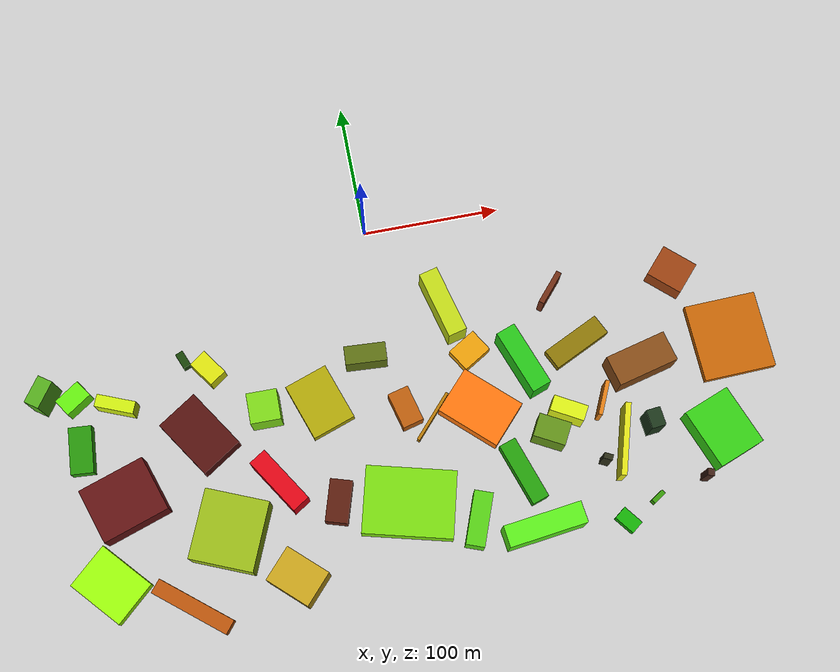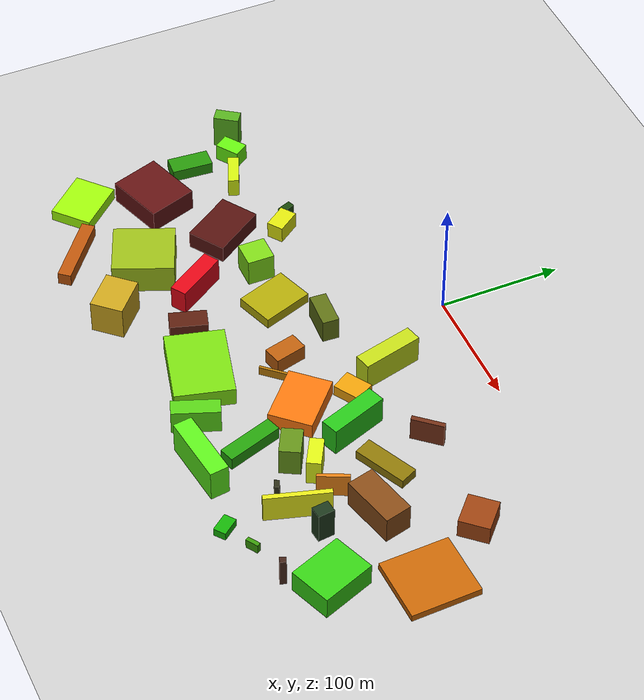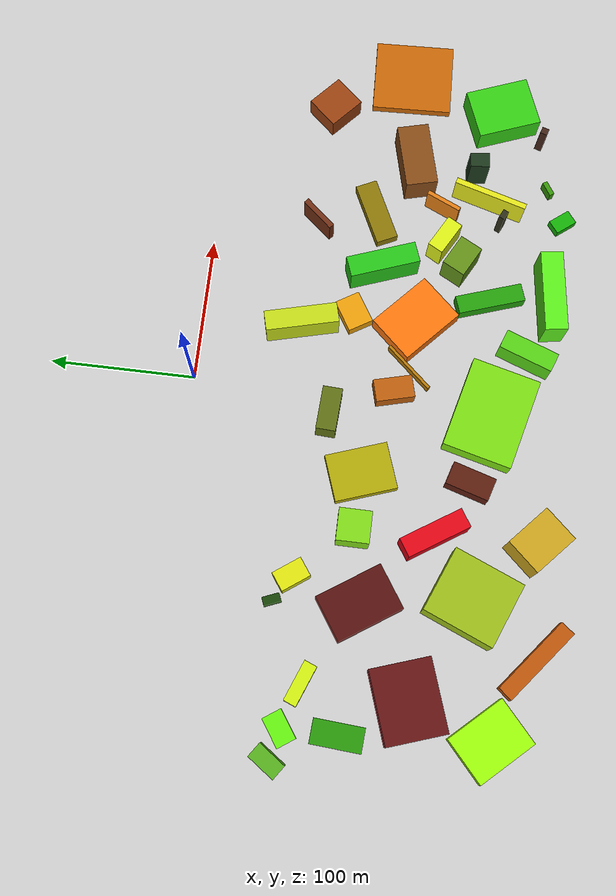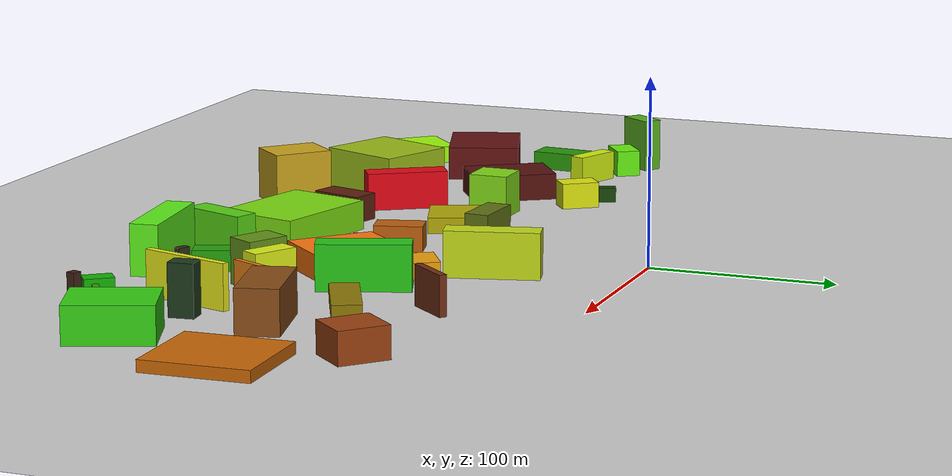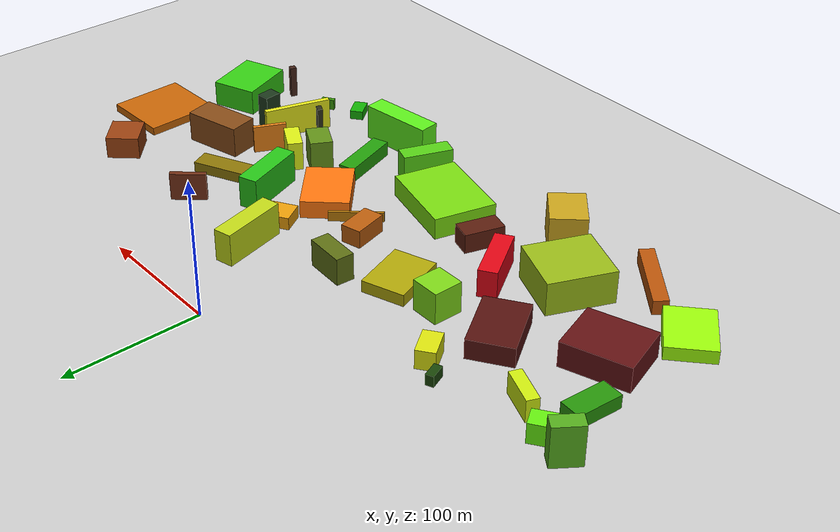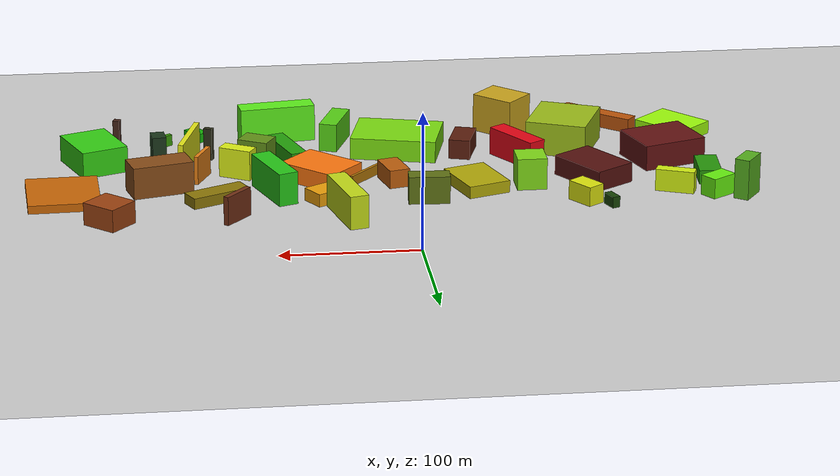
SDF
<sdf version="1.6">
 <world name="default">
  <model name="ground_plane">
   <static>1</static>
   <link name="link">
    <collision name="collision">
     <geometry><plane><normal>0 0 1</normal><size>1090 1090</size></plane></geometry>
     <surface>
      <contact><collide_bitmask>65535</collide_bitmask></contact>
      <friction><ode><mu>100</mu><mu2>50</mu2></ode></friction>
     </surface>
     <max_contacts>100</max_contacts>
    </collision>
    <visual name="visual">
     <cast_shadows>0</cast_shadows>
     <geometry><plane><normal>0 0 1</normal><size>1090 1090</size></plane></geometry>
     <material>
      <script><uri>file://media/materials/scripts/gazebo.material</uri><name>Gazebo/Grey</name></script>
     </material>
    </visual>
   </link>
  </model>
  <model name="box_5">
   <pose>93.0 -120.0 12.180641677544292 0.0 0.0 0.3478907333555959</pose>
   <link name="link">
    <inertial>
     <mass>1</mass>
     <inertia><ixx>1.0</ixx><ixy>0</ixy><ixz>0</ixz><iyy>1.0</iyy><iyz>0</iyz><izz>1.0</izz></inertia>
    </inertial>
    <collision name="collision">
     <geometry><box><size>14.568717129107444 48.8070347128669 24.361283355088585</size></box></geometry>
     <max_contacts>100</max_contacts>
    </collision>
    <visual name="visual">
     <geometry><box><size>14.568717129107444 48.8070347128669 24.361283355088585</size></box></geometry>
     <material>
      <ambient>0.1510670350167691 0.7726870333516273 0.09553444452975915 1</ambient>
      <diffuse>0.1510670350167691 0.7726870333516273 0.09553444452975915 1</diffuse>
     </material>
    </visual>
   </link>
  </model>
  <model name="box_6">
   <pose>-130.0 -201.0 12.420439109522807 0.0 0.0 2.746577244491435</pose>
   <link name="link">
    <inertial>
     <mass>1</mass>
     <inertia><ixx>1.0</ixx><ixy>0</ixy><ixz>0</ixz><iyy>1.0</iyy><iyz>0</iyz><izz>1.0</izz></inertia>
    </inertial>
    <collision name="collision">
     <geometry><box><size>45.535640340912956 49.55207788775828 24.840878219045614</size></box></geometry>
     <max_contacts>100</max_contacts>
    </collision>
    <visual name="visual">
     <geometry><box><size>45.535640340912956 49.55207788775828 24.840878219045614</size></box></geometry>
     <material>
      <ambient>0.6061634778335582 0.7349553700921742 0.09741520870213966 1</ambient>
      <diffuse>0.6061634778335582 0.7349553700921742 0.09741520870213966 1</diffuse>
     </material>
    </visual>
   </link>
  </model>
  <model name="box_8">
   <pose>-93.0 -120.0 11.785225408232899 0.0 0.0 -1.575943027175118</pose>
   <link name="link">
    <inertial>
     <mass>1</mass>
     <inertia><ixx>1.0</ixx><ixy>0</ixy><ixz>0</ixz><iyy>1.0</iyy><iyz>0</iyz><izz>1.0</izz></inertia>
    </inertial>
    <collision name="collision">
     <geometry><box><size>21.993526169065415 21.63359584731483 23.570450816465797</size></box></geometry>
     <max_contacts>100</max_contacts>
    </collision>
    <visual name="visual">
     <geometry><box><size>21.993526169065415 21.63359584731483 23.570450816465797</size></box></geometry>
     <material>
      <ambient>0.4954918938201597 0.844533946746231 0.09243314045672861 1</ambient>
      <diffuse>0.4954918938201597 0.844533946746231 0.09243314045672861 1</diffuse>
     </material>
    </visual>
   </link>
  </model>
  <model name="box_9">
   <pose>-164.0 -246.0 5.328805302925539 0.0 0.0 0.8906002371310532</pose>
   <link name="link">
    <inertial>
     <mass>1</mass>
     <inertia><ixx>1.0</ixx><ixy>0</ixy><ixz>0</ixz><iyy>1.0</iyy><iyz>0</iyz><izz>1.0</izz></inertia>
    </inertial>
    <collision name="collision">
     <geometry><box><size>10.84539500023051 59.44293036375359 10.657610605851078</size></box></geometry>
     <max_contacts>100</max_contacts>
    </collision>
    <visual name="visual">
     <geometry><box><size>10.84539500023051 59.44293036375359 10.657610605851078</size></box></geometry>
     <material>
      <ambient>0.732964302147717 0.3321250497890862 0.04179455139549442 1</ambient>
      <diffuse>0.732964302147717 0.3321250497890862 0.04179455139549442 1</diffuse>
     </material>
    </visual>
   </link>
  </model>
  <model name="box_13">
   <pose>-141.0 -129.0 7.3939138019333015 0.0 0.0 0.583486950459746</pose>
   <link name="link">
    <inertial>
     <mass>1</mass>
     <inertia><ixx>1.0</ixx><ixy>0</ixy><ixz>0</ixz><iyy>1.0</iyy><iyz>0</iyz><izz>1.0</izz></inertia>
    </inertial>
    <collision name="collision">
     <geometry><box><size>32.49622416145748 47.534398894730714 14.787827603866603</size></box></geometry>
     <max_contacts>100</max_contacts>
    </collision>
    <visual name="visual">
     <geometry><box><size>32.49622416145748 47.534398894730714 14.787827603866603</size></box></geometry>
     <material>
      <ambient>0.3330033309653926 0.07084292728000297 0.05799148079947687 1</ambient>
      <diffuse>0.3330033309653926 0.07084292728000297 0.05799148079947687 1</diffuse>
     </material>
    </visual>
   </link>
  </model>
  <model name="box_14">
   <pose>102.0 -174.0 12.236211449478962 0.0 0.0 -2.0681476778430423</pose>
   <link name="link">
    <inertial>
     <mass>1</mass>
     <inertia><ixx>1.0</ixx><ixy>0</ixy><ixz>0</ixz><iyy>1.0</iyy><iyz>0</iyz><izz>1.0</izz></inertia>
    </inertial>
    <collision name="collision">
     <geometry><box><size>16.761458297277493 23.171178610230232 24.472422898957923</size></box></geometry>
     <max_contacts>100</max_contacts>
    </collision>
    <visual name="visual">
     <geometry><box><size>16.761458297277493 23.171178610230232 24.472422898957923</size></box></geometry>
     <material>
      <ambient>0.38638441571702364 0.569032718956029 0.09597028587826636 1</ambient>
      <diffuse>0.38638441571702364 0.569032718956029 0.09597028587826636 1</diffuse>
     </material>
    </visual>
   </link>
  </model>
  <model name="box_15">
   <pose>-196.0 -97.0 8.17357476078345 0.0 0.0 2.758787207787016</pose>
   <link name="link">
    <inertial>
     <mass>1</mass>
     <inertia><ixx>1.0</ixx><ixy>0</ixy><ixz>0</ixz><iyy>1.0</iyy><iyz>0</iyz><izz>1.0</izz></inertia>
    </inertial>
    <collision name="collision">
     <geometry><box><size>28.291167822034396 8.949187133292341 16.3471495215669</size></box></geometry>
     <max_contacts>100</max_contacts>
    </collision>
    <visual name="visual">
     <geometry><box><size>28.291167822034396 8.949187133292341 16.3471495215669</size></box></geometry>
     <material>
      <ambient>0.8156770872116239 0.9296706031716788 0.06410646871202706 1</ambient>
      <diffuse>0.8156770872116239 0.9296706031716788 0.06410646871202706 1</diffuse>
     </material>
    </visual>
   </link>
  </model>
  <model name="box_19">
   <pose>-16.0 -95.0 10.220430348067152 0.0 0.0 -0.05964402914281683</pose>
   <link name="link">
    <inertial>
     <mass>1</mass>
     <inertia><ixx>1.0</ixx><ixy>0</ixy><ixz>0</ixz><iyy>1.0</iyy><iyz>0</iyz><izz>1.0</izz></inertia>
    </inertial>
    <collision name="collision">
     <geometry><box><size>29.72694537108584 13.459983994354998 20.440860696134305</size></box></geometry>
     <max_contacts>100</max_contacts>
    </collision>
    <visual name="visual">
     <geometry><box><size>29.72694537108584 13.459983994354998 20.440860696134305</size></box></geometry>
     <material>
      <ambient>0.3693755184638634 0.4395482027466472 0.0801602380240561 1</ambient>
      <diffuse>0.3693755184638634 0.4395482027466472 0.0801602380240561 1</diffuse>
     </material>
    </visual>
   </link>
  </model>
  <model name="box_23">
   <pose>-199.0 -166.0 9.504518910273303 0.0 0.0 1.8939893462124235</pose>
   <link name="link">
    <inertial>
     <mass>1</mass>
     <inertia><ixx>1.0</ixx><ixy>0</ixy><ixz>0</ixz><iyy>1.0</iyy><iyz>0</iyz><izz>1.0</izz></inertia>
    </inertial>
    <collision name="collision">
     <geometry><box><size>40.95194382159373 48.951772654198074 19.009037820546606</size></box></geometry>
     <max_contacts>100</max_contacts>
    </collision>
    <visual name="visual">
     <geometry><box><size>40.95194382159373 48.951772654198074 19.009037820546606</size></box></geometry>
     <material>
      <ambient>0.38695531870469224 0.07292859815211827 0.07454524635508473 1</ambient>
      <diffuse>0.38695531870469224 0.07292859815211827 0.07454524635508473 1</diffuse>
     </material>
    </visual>
   </link>
  </model>
  <model name="box_30">
   <pose>203.0 -224.0 12.413508423237495 0.0 0.0 -0.32165454282165035</pose>
   <link name="link">
    <inertial>
     <mass>1</mass>
     <inertia><ixx>1.0</ixx><ixy>0</ixy><ixz>0</ixz><iyy>1.0</iyy><iyz>0</iyz><izz>1.0</izz></inertia>
    </inertial>
    <collision name="collision">
     <geometry><box><size>4.813305103990317 4.957209498887963 24.82701684647499</size></box></geometry>
     <max_contacts>100</max_contacts>
    </collision>
    <visual name="visual">
     <geometry><box><size>4.813305103990317 4.957209498887963 24.82701684647499</size></box></geometry>
     <material>
      <ambient>0.26171214500727047 0.13915971177775255 0.0973608503783333 1</ambient>
      <diffuse>0.26171214500727047 0.13915971177775255 0.0973608503783333 1</diffuse>
     </material>
    </visual>
   </link>
  </model>
  <model name="box_34">
   <pose>175.0 -136.0 11.733812268122243 0.0 0.0 1.814076239464659</pose>
   <link name="link">
    <inertial>
     <mass>1</mass>
     <inertia><ixx>1.0</ixx><ixy>0</ixy><ixz>0</ixz><iyy>1.0</iyy><iyz>0</iyz><izz>1.0</izz></inertia>
    </inertial>
    <collision name="collision">
     <geometry><box><size>22.131204064604418 44.93614656815169 23.467624536244486</size></box></geometry>
     <max_contacts>100</max_contacts>
    </collision>
    <visual name="visual">
     <geometry><box><size>22.131204064604418 44.93614656815169 23.467624536244486</size></box></geometry>
     <material>
      <ambient>0.5309834691382032 0.29794252185444836 0.09202990014213525 1</ambient>
      <diffuse>0.5309834691382032 0.29794252185444836 0.09202990014213525 1</diffuse>
     </material>
    </visual>
   </link>
  </model>
  <model name="box_35">
   <pose>213.0 -74.0 8.339446234318029 0.0 0.0 2.4051965561209148</pose>
   <link name="link">
    <inertial>
     <mass>1</mass>
     <inertia><ixx>1.0</ixx><ixy>0</ixy><ixz>0</ixz><iyy>1.0</iyy><iyz>0</iyz><izz>1.0</izz></inertia>
    </inertial>
    <collision name="collision">
     <geometry><box><size>26.93304693015524 24.496622838593844 16.678892468636057</size></box></geometry>
     <max_contacts>100</max_contacts>
    </collision>
    <visual name="visual">
     <geometry><box><size>26.93304693015524 24.496622838593844 16.678892468636057</size></box></geometry>
     <material>
      <ambient>0.6058172867635624 0.2563903896120543 0.0654074214456316 1</ambient>
      <diffuse>0.6058172867635624 0.2563903896120543 0.0654074214456316 1</diffuse>
     </material>
    </visual>
   </link>
  </model>
  <model name="box_38">
   <pose>-5.0 -204.0 8.082145604959317 0.0 0.0 2.891012607475811</pose>
   <link name="link">
    <inertial>
     <mass>1</mass>
     <inertia><ixx>1.0</ixx><ixy>0</ixy><ixz>0</ixz><iyy>1.0</iyy><iyz>0</iyz><izz>1.0</izz></inertia>
    </inertial>
    <collision name="collision">
     <geometry><box><size>63.81542495513948 47.632628482941215 16.164291209918634</size></box></geometry>
     <max_contacts>100</max_contacts>
    </collision>
    <visual name="visual">
     <geometry><box><size>63.81542495513948 47.632628482941215 16.164291209918634</size></box></geometry>
     <material>
      <ambient>0.4810716751025005 0.8603596243398821 0.06338937729379857 1</ambient>
      <diffuse>0.4810716751025005 0.8603596243398821 0.06338937729379857 1</diffuse>
     </material>
    </visual>
   </link>
  </model>
  <model name="box_39">
   <pose>221.0 -194.0 9.888799346078489 0.0 0.0 -2.776487784236237</pose>
   <link name="link">
    <inertial>
     <mass>1</mass>
     <inertia><ixx>1.0</ixx><ixy>0</ixy><ixz>0</ixz><iyy>1.0</iyy><iyz>0</iyz><izz>1.0</izz></inertia>
    </inertial>
    <collision name="collision">
     <geometry><box><size>35.161756704427944 44.71986715520327 19.777598692156978</size></box></geometry>
     <max_contacts>100</max_contacts>
    </collision>
    <visual name="visual">
     <geometry><box><size>35.161756704427944 44.71986715520327 19.777598692156978</size></box></geometry>
     <material>
      <ambient>0.20723238165181845 0.8107544316672761 0.07755921055747834 1</ambient>
      <diffuse>0.20723238165181845 0.8107544316672761 0.07755921055747834 1</diffuse>
     </material>
    </visual>
   </link>
  </model>
  <model name="box_40">
   <pose>136.0 -200.0 12.132162485877139 0.0 0.0 2.6780863786500375</pose>
   <link name="link">
    <inertial>
     <mass>1</mass>
     <inertia><ixx>1.0</ixx><ixy>0</ixy><ixz>0</ixz><iyy>1.0</iyy><iyz>0</iyz><izz>1.0</izz></inertia>
    </inertial>
    <collision name="collision">
     <geometry><box><size>6.462550297341975 4.063285738065802 24.264324971754277</size></box></geometry>
     <max_contacts>100</max_contacts>
    </collision>
    <visual name="visual">
     <geometry><box><size>6.462550297341975 4.063285738065802 24.264324971754277</size></box></geometry>
     <material>
      <ambient>0.17641557062571545 0.18113544883706556 0.09515421557550698 1</ambient>
      <diffuse>0.17641557062571545 0.18113544883706556 0.09515421557550698 1</diffuse>
     </material>
    </visual>
   </link>
  </model>
  <model name="box_41">
   <pose>143.0 -244.0 3.476469358814098 0.0 0.0 -0.9147182973642045</pose>
   <link name="link">
    <inertial>
     <mass>1</mass>
     <inertia><ixx>1.0</ixx><ixy>0</ixy><ixz>0</ixz><iyy>1.0</iyy><iyz>0</iyz><izz>1.0</izz></inertia>
    </inertial>
    <collision name="collision">
     <geometry><box><size>15.856706889763535 10.18111910579626 6.952938717628196</size></box></geometry>
     <max_contacts>100</max_contacts>
    </collision>
    <visual name="visual">
     <geometry><box><size>15.856706889763535 10.18111910579626 6.952938717628196</size></box></geometry>
     <material>
      <ambient>0.07983863676356695 0.6925122687197355 0.027266426343639984 1</ambient>
      <diffuse>0.07983863676356695 0.6925122687197355 0.027266426343639984 1</diffuse>
     </material>
    </visual>
   </link>
  </model>
  <model name="box_43">
   <pose>45.0 -69.0 12.29163479925328 0.0 0.0 -2.896683955795986</pose>
   <link name="link">
    <inertial>
     <mass>1</mass>
     <inertia><ixx>1.0</ixx><ixy>0</ixy><ixz>0</ixz><iyy>1.0</iyy><iyz>0</iyz><izz>1.0</izz></inertia>
    </inertial>
    <collision name="collision">
     <geometry><box><size>13.75184413998748 50.04514592465157 24.58326959850656</size></box></geometry>
     <max_contacts>100</max_contacts>
    </collision>
    <visual name="visual">
     <geometry><box><size>13.75184413998748 50.04514592465157 24.58326959850656</size></box></geometry>
     <material>
      <ambient>0.7639931604975965 0.8532520939976921 0.09640497881767279 1</ambient>
      <diffuse>0.7639931604975965 0.8532520939976921 0.09640497881767279 1</diffuse>
     </material>
    </visual>
   </link>
  </model>
  <model name="box_44">
   <pose>83.0 -238.0 13.774347091724763 0.0 0.0 -1.4452200126075483</pose>
   <link name="link">
    <inertial>
     <mass>1</mass>
     <inertia><ixx>1.0</ixx><ixy>0</ixy><ixz>0</ixz><iyy>1.0</iyy><iyz>0</iyz><izz>1.0</izz></inertia>
    </inertial>
    <collision name="collision">
     <geometry><box><size>15.455555862027065 56.23346511368365 27.548694183449527</size></box></geometry>
     <max_contacts>100</max_contacts>
    </collision>
    <visual name="visual">
     <geometry><box><size>15.455555862027065 56.23346511368365 27.548694183449527</size></box></geometry>
     <material>
      <ambient>0.36477967992937377 0.9359964496559172 0.10803409483705696 1</ambient>
      <diffuse>0.36477967992937377 0.9359964496559172 0.10803409483705696 1</diffuse>
     </material>
    </visual>
   </link>
  </model>
  <model name="box_50">
   <pose>40.0 -225.0 10.578530268620582 0.0 0.0 -0.35900548347877853</pose>
   <link name="link">
    <inertial>
     <mass>1</mass>
     <inertia><ixx>1.0</ixx><ixy>0</ixy><ixz>0</ixz><iyy>1.0</iyy><iyz>0</iyz><izz>1.0</izz></inertia>
    </inertial>
    <collision name="collision">
     <geometry><box><size>13.319653773570415 38.08172055820613 21.157060537241165</size></box></geometry>
     <max_contacts>100</max_contacts>
    </collision>
    <visual name="visual">
     <geometry><box><size>13.319653773570415 38.08172055820613 21.157060537241165</size></box></geometry>
     <material>
      <ambient>0.3388512799730252 0.8157356768695342 0.08296886485192613 1</ambient>
      <diffuse>0.3388512799730252 0.8157356768695342 0.08296886485192613 1</diffuse>
     </material>
    </visual>
   </link>
  </model>
  <model name="box_52">
   <pose>-225.0 -87.0 7.467189815625993 0.0 0.0 2.1683072941414405</pose>
   <link name="link">
    <inertial>
     <mass>1</mass>
     <inertia><ixx>1.0</ixx><ixy>0</ixy><ixz>0</ixz><iyy>1.0</iyy><iyz>0</iyz><izz>1.0</izz></inertia>
    </inertial>
    <collision name="collision">
     <geometry><box><size>13.723568482200209 20.758068159289614 14.934379631251986</size></box></geometry>
     <max_contacts>100</max_contacts>
    </collision>
    <visual name="visual">
     <geometry><box><size>13.723568482200209 20.758068159289614 14.934379631251986</size></box></geometry>
     <material>
      <ambient>0.3983960676874573 0.938839908962965 0.05856619463236073 1</ambient>
      <diffuse>0.3983960676874573 0.938839908962965 0.05856619463236073 1</diffuse>
     </material>
    </visual>
   </link>
  </model>
  <model name="box_53">
   <pose>78.0 -197.0 5.576283907005665 0.0 0.0 -1.2492827190321332</pose>
   <link name="link">
    <inertial>
     <mass>1</mass>
     <inertia><ixx>1.0</ixx><ixy>0</ixy><ixz>0</ixz><iyy>1.0</iyy><iyz>0</iyz><izz>1.0</izz></inertia>
    </inertial>
    <collision name="collision">
     <geometry><box><size>46.772057144347556 12.579333476927994 11.15256781401133</size></box></geometry>
     <max_contacts>100</max_contacts>
    </collision>
    <visual name="visual">
     <geometry><box><size>46.772057144347556 12.579333476927994 11.15256781401133</size></box></geometry>
     <material>
      <ambient>0.14142465896214285 0.6263254640437175 0.043735560054946394 1</ambient>
      <diffuse>0.14142465896214285 0.6263254640437175 0.043735560054946394 1</diffuse>
     </material>
    </visual>
   </link>
  </model>
  <model name="box_57">
   <pose>151.0 -190.0 12.043856261997218 0.0 0.0 1.2854394146472847</pose>
   <link name="link">
    <inertial>
     <mass>1</mass>
     <inertia><ixx>1.0</ixx><ixy>0</ixy><ixz>0</ixz><iyy>1.0</iyy><iyz>0</iyz><izz>1.0</izz></inertia>
    </inertial>
    <collision name="collision">
     <geometry><box><size>51.70887473942381 3.978318392629522 24.087712523994437</size></box></geometry>
     <max_contacts>100</max_contacts>
    </collision>
    <visual name="visual">
     <geometry><box><size>51.70887473942381 3.978318392629522 24.087712523994437</size></box></geometry>
     <material>
      <ambient>0.8921513724454181 0.8969720653918409 0.09446161774115465 1</ambient>
      <diffuse>0.8921513724454181 0.8969720653918409 0.09446161774115465 1</diffuse>
     </material>
    </visual>
   </link>
  </model>
  <model name="box_59">
   <pose>-91.0 -173.0 10.476908913860031 0.0 0.0 -1.0013506717505154</pose>
   <link name="link">
    <inertial>
     <mass>1</mass>
     <inertia><ixx>1.0</ixx><ixy>0</ixy><ixz>0</ixz><iyy>1.0</iyy><iyz>0</iyz><izz>1.0</izz></inertia>
    </inertial>
    <collision name="collision">
     <geometry><box><size>45.5059008148827 13.641786939762508 20.953817827720062</size></box></geometry>
     <max_contacts>100</max_contacts>
    </collision>
    <visual name="visual">
     <geometry><box><size>45.5059008148827 13.641786939762508 20.953817827720062</size></box></geometry>
     <material>
      <ambient>0.8869161425110601 0.022240258857191275 0.08217183461851005 1</ambient>
      <diffuse>0.8869161425110601 0.022240258857191275 0.08217183461851005 1</diffuse>
     </material>
    </visual>
   </link>
  </model>
  <model name="box_61">
   <pose>-89.0 -241.0 14.385014468158124 0.0 0.0 -2.312393342709847</pose>
   <link name="link">
    <inertial>
     <mass>1</mass>
     <inertia><ixx>1.0</ixx><ixy>0</ixy><ixz>0</ixz><iyy>1.0</iyy><iyz>0</iyz><izz>1.0</izz></inertia>
    </inertial>
    <collision name="collision">
     <geometry><box><size>26.638618352874758 33.65732865111629 28.770028936316248</size></box></geometry>
     <max_contacts>100</max_contacts>
    </collision>
    <visual name="visual">
     <geometry><box><size>26.638618352874758 33.65732865111629 28.770028936316248</size></box></geometry>
     <material>
      <ambient>0.7931377531728706 0.6411030666062092 0.1128236428875147 1</ambient>
      <diffuse>0.7931377531728706 0.6411030666062092 0.1128236428875147 1</diffuse>
     </material>
    </visual>
   </link>
  </model>
  <model name="box_62">
   <pose>143.0 -158.0 10.612784833959536 0.0 0.0 2.7126834702468043</pose>
   <link name="link">
    <inertial>
     <mass>1</mass>
     <inertia><ixx>1.0</ixx><ixy>0</ixy><ixz>0</ixz><iyy>1.0</iyy><iyz>0</iyz><izz>1.0</izz></inertia>
    </inertial>
    <collision name="collision">
     <geometry><box><size>2.9094047264742824 25.195525178283663 21.22556966791907</size></box></geometry>
     <max_contacts>100</max_contacts>
    </collision>
    <visual name="visual">
     <geometry><box><size>2.9094047264742824 25.195525178283663 21.22556966791907</size></box></geometry>
     <material>
      <ambient>0.8903254708431828 0.49776740475164527 0.08323752810948655 1</ambient>
      <diffuse>0.8903254708431828 0.49776740475164527 0.08323752810948655 1</diffuse>
     </material>
    </visual>
   </link>
  </model>
  <model name="box_66">
   <pose>167.0 -232.0 4.202942264141191 0.0 0.0 2.141572495543996</pose>
   <link name="link">
    <inertial>
     <mass>1</mass>
     <inertia><ixx>1.0</ixx><ixy>0</ixy><ixz>0</ixz><iyy>1.0</iyy><iyz>0</iyz><izz>1.0</izz></inertia>
    </inertial>
    <collision name="collision">
     <geometry><box><size>3.4628423741446364 10.488893567857467 8.405884528282382</size></box></geometry>
     <max_contacts>100</max_contacts>
    </collision>
    <visual name="visual">
     <geometry><box><size>3.4628423741446364 10.488893567857467 8.405884528282382</size></box></geometry>
     <material>
      <ambient>0.21653841395676565 0.5954912912606012 0.03296425305208777 1</ambient>
      <diffuse>0.21653841395676565 0.5954912912606012 0.03296425305208777 1</diffuse>
     </material>
    </visual>
   </link>
  </model>
  <model name="box_73">
   <pose>57.0 -147.0 6.736701346163523 0.0 0.0 -2.3184936648706436</pose>
   <link name="link">
    <inertial>
     <mass>1</mass>
     <inertia><ixx>1.0</ixx><ixy>0</ixy><ixz>0</ixz><iyy>1.0</iyy><iyz>0</iyz><izz>1.0</izz></inertia>
    </inertial>
    <collision name="collision">
     <geometry><box><size>35.465200659061054 47.67070644424733 13.473402692327046</size></box></geometry>
     <max_contacts>100</max_contacts>
    </collision>
    <visual name="visual">
     <geometry><box><size>35.465200659061054 47.67070644424733 13.473402692327046</size></box></geometry>
     <material>
      <ambient>0.9920070039961404 0.4630234658226756 0.05283687330324332 1</ambient>
      <diffuse>0.9920070039961404 0.4630234658226756 0.05283687330324332 1</diffuse>
     </material>
    </visual>
   </link>
  </model>
  <model name="box_79">
   <pose>-53.0 -194.0 7.329973770237946 0.0 0.0 -0.2949790749454574</pose>
   <link name="link">
    <inertial>
     <mass>1</mass>
     <inertia><ixx>1.0</ixx><ixy>0</ixy><ixz>0</ixz><iyy>1.0</iyy><iyz>0</iyz><izz>1.0</izz></inertia>
    </inertial>
    <collision name="collision">
     <geometry><box><size>15.839266251435271 30.178824433096537 14.659947540475892</size></box></geometry>
     <max_contacts>100</max_contacts>
    </collision>
    <visual name="visual">
     <geometry><box><size>15.839266251435271 30.178824433096537 14.659947540475892</size></box></geometry>
     <material>
      <ambient>0.3579974531068668 0.11577986290016462 0.057489990354807424 1</ambient>
      <diffuse>0.3579974531068668 0.11577986290016462 0.057489990354807424 1</diffuse>
     </material>
    </visual>
   </link>
  </model>
  <model name="box_80">
   <pose>23.0 -146.0 3.8312740782133403 0.0 0.0 -2.304366436370442</pose>
   <link name="link">
    <inertial>
     <mass>1</mass>
     <inertia><ixx>1.0</ixx><ixy>0</ixy><ixz>0</ixz><iyy>1.0</iyy><iyz>0</iyz><izz>1.0</izz></inertia>
    </inertial>
    <collision name="collision">
     <geometry><box><size>39.73992937379672 2.134152422848265 7.662548156426681</size></box></geometry>
     <max_contacts>100</max_contacts>
    </collision>
    <visual name="visual">
     <geometry><box><size>39.73992937379672 2.134152422848265 7.662548156426681</size></box></geometry>
     <material>
      <ambient>0.713747949260759 0.47321885048339085 0.03004920845657522 1</ambient>
      <diffuse>0.713747949260759 0.47321885048339085 0.03004920845657522 1</diffuse>
     </material>
    </visual>
   </link>
  </model>
  <model name="box_81">
   <pose>5.0 -137.0 6.824074013637423 0.0 0.0 -1.3210916093599583</pose>
   <link name="link">
    <inertial>
     <mass>1</mass>
     <inertia><ixx>1.0</ixx><ixy>0</ixy><ixz>0</ixz><iyy>1.0</iyy><iyz>0</iyz><izz>1.0</izz></inertia>
    </inertial>
    <collision name="collision">
     <geometry><box><size>26.53294448973685 15.412126520552876 13.648148027274846</size></box></geometry>
     <max_contacts>100</max_contacts>
    </collision>
    <visual name="visual">
     <geometry><box><size>26.53294448973685 15.412126520552876 13.648148027274846</size></box></geometry>
     <material>
      <ambient>0.7370607822659504 0.3686737570181271 0.053522149126568025 1</ambient>
      <diffuse>0.7370607822659504 0.3686737570181271 0.053522149126568025 1</diffuse>
     </material>
    </visual>
   </link>
  </model>
  <model name="box_83">
   <pose>245.0 -128.0 3.047889268219996 0.0 0.0 -1.5369852967815305</pose>
   <link name="link">
    <inertial>
     <mass>1</mass>
     <inertia><ixx>1.0</ixx><ixy>0</ixy><ixz>0</ixz><iyy>1.0</iyy><iyz>0</iyz><izz>1.0</izz></inertia>
    </inertial>
    <collision name="collision">
     <geometry><box><size>56.18522464515669 52.27310641391283 6.095778536439992</size></box></geometry>
     <max_contacts>100</max_contacts>
    </collision>
    <visual name="visual">
     <geometry><box><size>56.18522464515669 52.27310641391283 6.095778536439992</size></box></geometry>
     <material>
      <ambient>0.7826340301863268 0.3993910678504655 0.023905013868392125 1</ambient>
      <diffuse>0.7826340301863268 0.3993910678504655 0.023905013868392125 1</diffuse>
     </material>
    </visual>
   </link>
  </model>
  <model name="box_84">
   <pose>-245.0 -82.0 14.96398686879158 0.0 0.0 0.9560396650358185</pose>
   <link name="link">
    <inertial>
     <mass>1</mass>
     <inertia><ixx>1.0</ixx><ixy>0</ixy><ixz>0</ixz><iyy>1.0</iyy><iyz>0</iyz><izz>1.0</izz></inertia>
    </inertial>
    <collision name="collision">
     <geometry><box><size>20.801453976119756 11.066914053185233 29.92797373758316</size></box></geometry>
     <max_contacts>100</max_contacts>
    </collision>
    <visual name="visual">
     <geometry><box><size>20.801453976119756 11.066914053185233 29.92797373758316</size></box></geometry>
     <material>
      <ambient>0.33568366749348433 0.6804584691860653 0.11736460289248297 1</ambient>
      <diffuse>0.33568366749348433 0.6804584691860653 0.11736460289248297 1</diffuse>
     </material>
    </visual>
   </link>
  </model>
  <model name="box_94">
   <pose>-217.0 -221.0 4.894389115679768 0.0 0.0 -0.8377545759619555</pose>
   <link name="link">
    <inertial>
     <mass>1</mass>
     <inertia><ixx>1.0</ixx><ixy>0</ixy><ixz>0</ixz><iyy>1.0</iyy><iyz>0</iyz><izz>1.0</izz></inertia>
    </inertial>
    <collision name="collision">
     <geometry><box><size>43.623836499159125 34.39170782896861 9.788778231359537</size></box></geometry>
     <max_contacts>100</max_contacts>
    </collision>
    <visual name="visual">
     <geometry><box><size>43.623836499159125 34.39170782896861 9.788778231359537</size></box></geometry>
     <material>
      <ambient>0.6175609236648404 0.9891513802024257 0.03838736561317466 1</ambient>
      <diffuse>0.6175609236648404 0.9891513802024257 0.03838736561317466 1</diffuse>
     </material>
    </visual>
   </link>
  </model>
  <model name="box_95">
   <pose>-128.0 -83.0 7.1822747722254405 0.0 0.0 -2.522937255477635</pose>
   <link name="link">
    <inertial>
     <mass>1</mass>
     <inertia><ixx>1.0</ixx><ixy>0</ixy><ixz>0</ixz><iyy>1.0</iyy><iyz>0</iyz><izz>1.0</izz></inertia>
    </inertial>
    <collision name="collision">
     <geometry><box><size>13.727901948346876 21.26176689227792 14.364549544450881</size></box></geometry>
     <max_contacts>100</max_contacts>
    </collision>
    <visual name="visual">
     <geometry><box><size>13.727901948346876 21.26176689227792 14.364549544450881</size></box></geometry>
     <material>
      <ambient>0.8667554024550278 0.8926843104111059 0.056331566840983845 1</ambient>
      <diffuse>0.8667554024550278 0.8926843104111059 0.056331566840983845 1</diffuse>
     </material>
    </visual>
   </link>
  </model>
  <model name="box_97">
   <pose>-145.0 -72.0 4.103647153428659 0.0 0.0 1.9548253489771588</pose>
   <link name="link">
    <inertial>
     <mass>1</mass>
     <inertia><ixx>1.0</ixx><ixy>0</ixy><ixz>0</ixz><iyy>1.0</iyy><iyz>0</iyz><izz>1.0</izz></inertia>
    </inertial>
    <collision name="collision">
     <geometry><box><size>11.890616652996691 5.843474174398671 8.207294306857317</size></box></geometry>
     <max_contacts>100</max_contacts>
    </collision>
    <visual name="visual">
     <geometry><box><size>11.890616652996691 5.843474174398671 8.207294306857317</size></box></geometry>
     <material>
      <ambient>0.09631551835545815 0.2687869182430733 0.0321854678700287 1</ambient>
      <diffuse>0.09631551835545815 0.2687869182430733 0.0321854678700287 1</diffuse>
     </material>
    </visual>
   </link>
  </model>
  <model name="box_102">
   <pose>135.0 -112.0 4.022821187851656 0.0 0.0 0.44279375818264916</pose>
   <link name="link">
    <inertial>
     <mass>1</mass>
     <inertia><ixx>1.0</ixx><ixy>0</ixy><ixz>0</ixz><iyy>1.0</iyy><iyz>0</iyz><izz>1.0</izz></inertia>
    </inertial>
    <collision name="collision">
     <geometry><box><size>45.04598361415417 15.272217187784182 8.045642375703313</size></box></geometry>
     <max_contacts>100</max_contacts>
    </collision>
    <visual name="visual">
     <geometry><box><size>45.04598361415417 15.272217187784182 8.045642375703313</size></box></geometry>
     <material>
      <ambient>0.550976971496709 0.4676221734836721 0.031551538728248285 1</ambient>
      <diffuse>0.550976971496709 0.4676221734836721 0.031551538728248285 1</diffuse>
     </material>
    </visual>
   </link>
  </model>
  <model name="box_106">
   <pose>-54.0 -121.0 4.486791488278155 0.0 0.0 0.33378986143757877</pose>
   <link name="link">
    <inertial>
     <mass>1</mass>
     <inertia><ixx>1.0</ixx><ixy>0</ixy><ixz>0</ixz><iyy>1.0</iyy><iyz>0</iyz><izz>1.0</izz></inertia>
    </inertial>
    <collision name="collision">
     <geometry><box><size>32.173116024777315 42.74829784695769 8.97358297655631</size></box></geometry>
     <max_contacts>100</max_contacts>
    </collision>
    <visual name="visual">
     <geometry><box><size>32.173116024777315 42.74829784695769 8.97358297655631</size></box></geometry>
     <material>
      <ambient>0.6949196783177675 0.6578049838894168 0.03519052147669141 1</ambient>
      <diffuse>0.6949196783177675 0.6578049838894168 0.03519052147669141 1</diffuse>
     </material>
    </visual>
   </link>
  </model>
  <model name="box_111">
   <pose>123.0 -72.0 10.576791173111886 0.0 0.0 -0.7159233736941056</pose>
   <link name="link">
    <inertial>
     <mass>1</mass>
     <inertia><ixx>1.0</ixx><ixy>0</ixy><ixz>0</ixz><iyy>1.0</iyy><iyz>0</iyz><izz>1.0</izz></inertia>
    </inertial>
    <collision name="collision">
     <geometry><box><size>3.9593725958411863 26.317512278791924 21.15358234622377</size></box></geometry>
     <max_contacts>100</max_contacts>
    </collision>
    <visual name="visual">
     <geometry><box><size>3.9593725958411863 26.317512278791924 21.15358234622377</size></box></geometry>
     <material>
      <ambient>0.44466420739260726 0.18393361243019324 0.08295522488715204 1</ambient>
      <diffuse>0.44466420739260726 0.18393361243019324 0.08295522488715204 1</diffuse>
     </material>
    </visual>
   </link>
  </model>
  <model name="box_120">
   <pose>58.0 -104.0 4.773782314643148 0.0 0.0 -1.0270434939496211</pose>
   <link name="link">
    <inertial>
     <mass>1</mass>
     <inertia><ixx>1.0</ixx><ixy>0</ixy><ixz>0</ixz><iyy>1.0</iyy><iyz>0</iyz><izz>1.0</izz></inertia>
    </inertial>
    <collision name="collision">
     <geometry><box><size>17.819697739779606 22.90162376605965 9.547564629286295</size></box></geometry>
     <max_contacts>100</max_contacts>
    </collision>
    <visual name="visual">
     <geometry><box><size>17.819697739779606 22.90162376605965 9.547564629286295</size></box></geometry>
     <material>
      <ambient>0.9233924007450296 0.6225097963627779 0.03744142991876979 1</ambient>
      <diffuse>0.9233924007450296 0.6225097963627779 0.03744142991876979 1</diffuse>
     </material>
    </visual>
   </link>
  </model>
  <model name="box_121">
   <pose>174.0 -180.0 13.713576163597404 0.0 0.0 0.10827061116910523</pose>
   <link name="link">
    <inertial>
     <mass>1</mass>
     <inertia><ixx>1.0</ixx><ixy>0</ixy><ixz>0</ixz><iyy>1.0</iyy><iyz>0</iyz><izz>1.0</izz></inertia>
    </inertial>
    <collision name="collision">
     <geometry><box><size>10.166540634925372 13.415085191896832 27.427152327194808</size></box></geometry>
     <max_contacts>100</max_contacts>
    </collision>
    <visual name="visual">
     <geometry><box><size>10.166540634925372 13.415085191896832 27.427152327194808</size></box></geometry>
     <material>
      <ambient>0.1095513165491262 0.2167413304105975 0.10755746010664631 1</ambient>
      <diffuse>0.1095513165491262 0.2167413304105975 0.10755746010664631 1</diffuse>
     </material>
    </visual>
   </link>
  </model>
  <model name="box_123">
   <pose>117.0 -161.0 11.21372675303838 0.0 0.0 1.0574191394318593</pose>
   <link name="link">
    <inertial>
     <mass>1</mass>
     <inertia><ixx>1.0</ixx><ixy>0</ixy><ixz>0</ixz><iyy>1.0</iyy><iyz>0</iyz><izz>1.0</izz></inertia>
    </inertial>
    <collision name="collision">
     <geometry><box><size>11.248130748663348 24.865126790169207 22.42745350607676</size></box></geometry>
     <max_contacts>100</max_contacts>
    </collision>
    <visual name="visual">
     <geometry><box><size>11.248130748663348 24.865126790169207 22.42745350607676</size></box></geometry>
     <material>
      <ambient>0.8651905016380781 0.9380804240841811 0.08795079806304612 1</ambient>
      <diffuse>0.8651905016380781 0.9380804240841811 0.08795079806304612 1</diffuse>
     </material>
    </visual>
   </link>
  </model>
  <model name="box_124">
   <pose>-225.0 -124.0 5.117026837135705 0.0 0.0 1.4976654640028524</pose>
   <link name="link">
    <inertial>
     <mass>1</mass>
     <inertia><ixx>1.0</ixx><ixy>0</ixy><ixz>0</ixz><iyy>1.0</iyy><iyz>0</iyz><izz>1.0</izz></inertia>
    </inertial>
    <collision name="collision">
     <geometry><box><size>33.730550844203236 16.357494828981537 10.23405367427141</size></box></geometry>
     <max_contacts>100</max_contacts>
    </collision>
    <visual name="visual">
     <geometry><box><size>33.730550844203236 16.357494828981537 10.23405367427141</size></box></geometry>
     <material>
      <ambient>0.152924441006141 0.5845916651549035 0.0401335438206722 1</ambient>
      <diffuse>0.152924441006141 0.5845916651549035 0.0401335438206722 1</diffuse>
     </material>
    </visual>
   </link>
  </model>
 </world>
</sdf>
